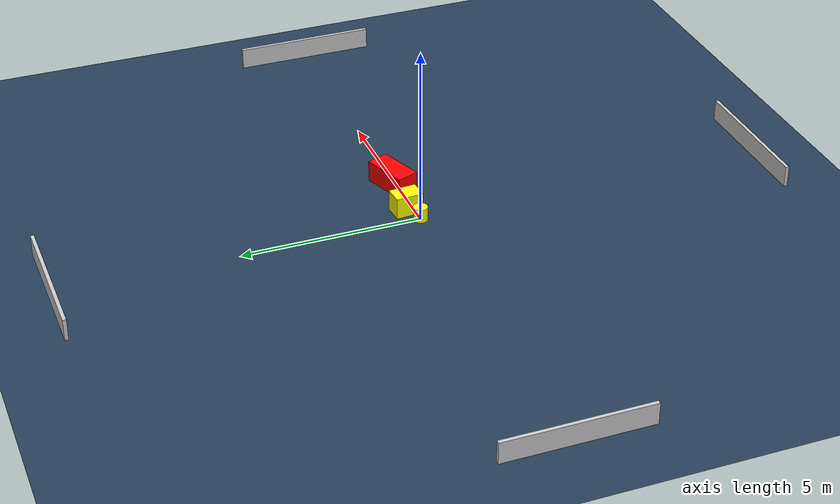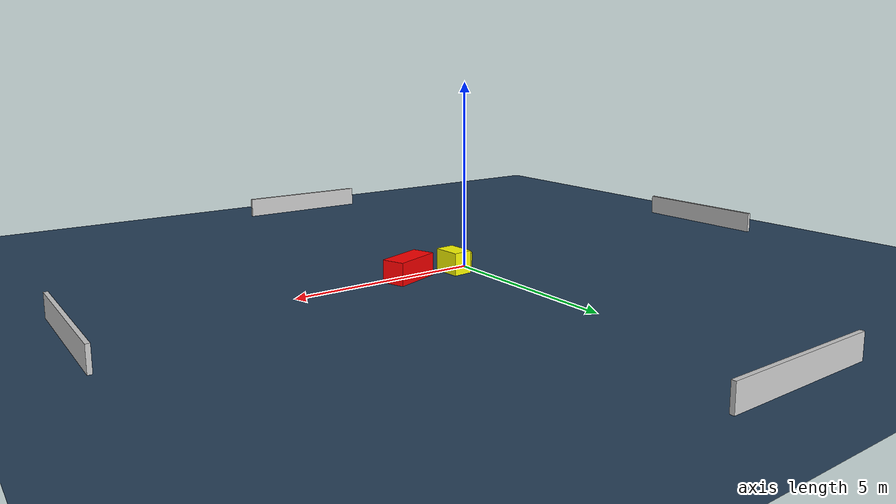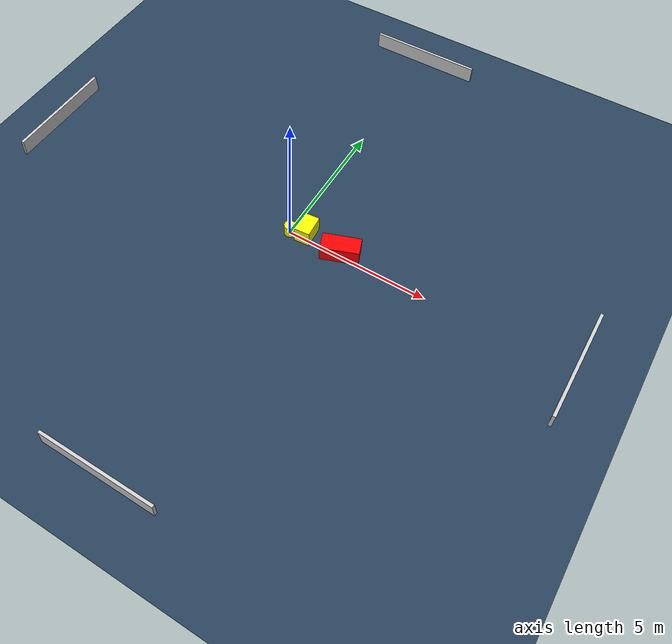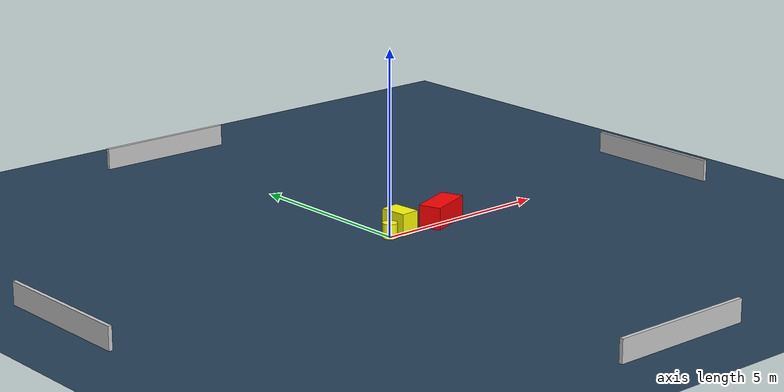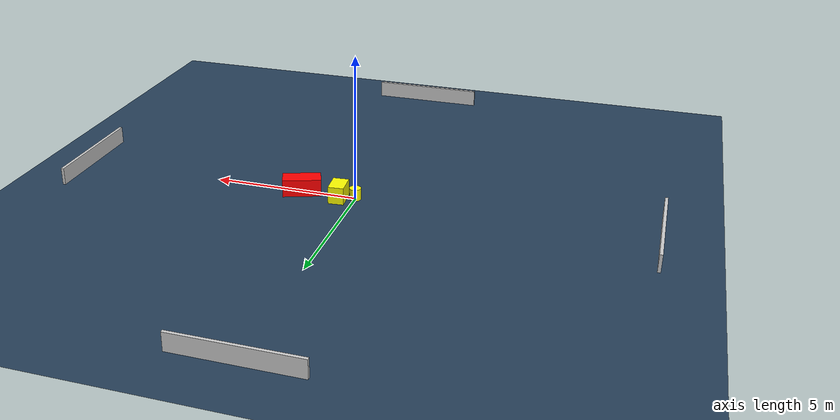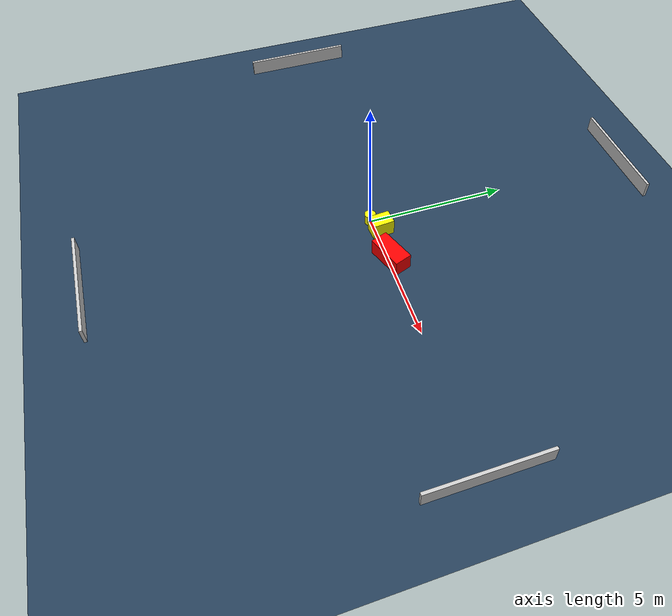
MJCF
<?xml version="1.0" ?>
<mujoco model="generated_environment">
  <option timestep="0.01" integrator="RK4" cone="elliptic"/>
  <default>
    <geom density="1"/>
  </default>
  <asset>
    <texture builtin="gradient" height="3072" name="skybox" rgb1="0.3 0.5 0.7" rgb2="0 0 0" type="skybox" width="512"/>
    <texture builtin="checker" height="300" name="groundplane" rgb1="0.2 0.3 0.4" rgb2="0.1 0.2 0.3" type="2d" width="300"/>
    <material name="groundplane" reflectance="0.2" texrepeat="5 5" texture="groundplane"/>
  </asset>
  <worldbody>
    <light dir="0 0 -1" directional="true" pos="0 0 1.5"/>
    <geom condim="3" friction="0.5 0.005 0.001" material="groundplane" name="floor" pos="0 0 0" size="0 0 0.05" type="plane"/>
    <body name="walls">
      <geom name="wall_1" condim="4" pos="-10.0 0.0 0.3" rgba="0.800000011920929 0.800000011920929 0.800000011920929 1.0" size="0.05 2.0 0.3" type="box"/>
      <geom name="wall_2" condim="4" pos="10.0 0.0 0.3" rgba="0.800000011920929 0.800000011920929 0.800000011920929 1.0" size="0.05 2.0 0.3" type="box"/>
      <geom name="wall_3" condim="4" pos="0.0 -10.0 0.3" rgba="0.800000011920929 0.800000011920929 0.800000011920929 1.0" size="2.0 0.05 0.3" type="box"/>
      <geom name="wall_4" condim="4" pos="0.0 10.0 0.3" rgba="0.800000011920929 0.800000011920929 0.800000011920929 1.0" size="2.0 0.05 0.3" type="box"/>
    </body>
    <body name="robot">
      <joint name="joint_x" type="slide" pos="0 0 0" axis="1 0 0"/>
      <joint name="joint_y" type="slide" pos="0 0 0" axis="0 1 0"/>
      <geom name="robot" type="cylinder" pos="0.0 0.0 0.2" size="0.2 0.2 0.0" mass="5.0" friction="1.0 0.005 0.0001" condim="4" rgba="1.0 1.0 0.0 1.0"/>
    </body>
    <body name="obstacle_1_movable">
      <geom name="obstacle_1_movable" condim="4" pos="0.5260223413525484 0.2173980594861036 0.3" euler="0 0 4.216452007080447" friction="0.0 0.005 0.001" rgba="1.0 1.0 0.0 1.0" size="0.26706240966364736 0.3872405126665539 0.3" type="box" mass="0.1"/>
      <joint type="free"/>
    </body>
    <body name="obstacle_2_static">
      <geom name="obstacle_2_static" condim="4" pos="1.8809948426941718 0.10370307437708937 0.3" euler="0 0 110.11726209786283" friction="0.0 0.005 0.001" rgba="1.0 0.0 0.0 1.0" size="0.31192390373787465 0.6537785617622454 0.3" type="box"/>
    </body>
  </worldbody>
  <actuator>
    <motor name="actuator_x" joint="joint_x" gear="1" ctrlrange="-1 1"/>
    <motor name="actuator_y" joint="joint_y" gear="1" ctrlrange="-1 1"/>
  </actuator>
</mujoco>
